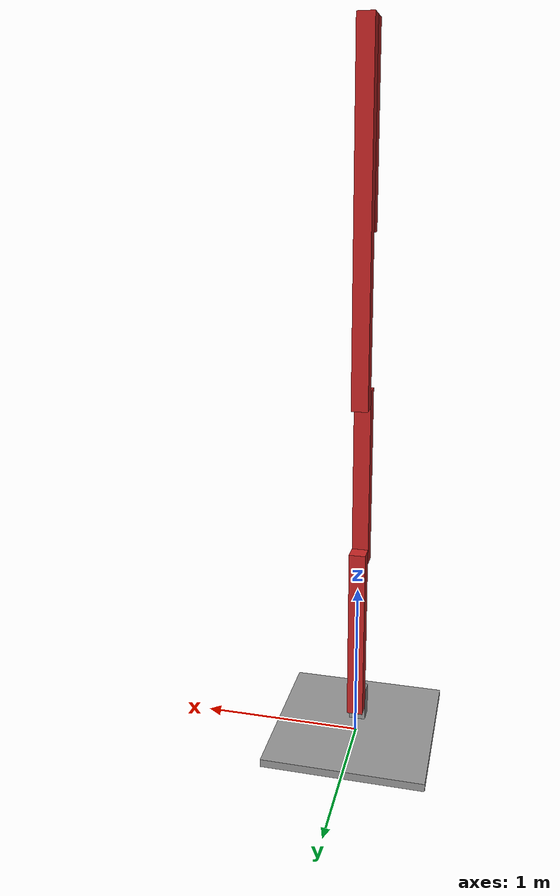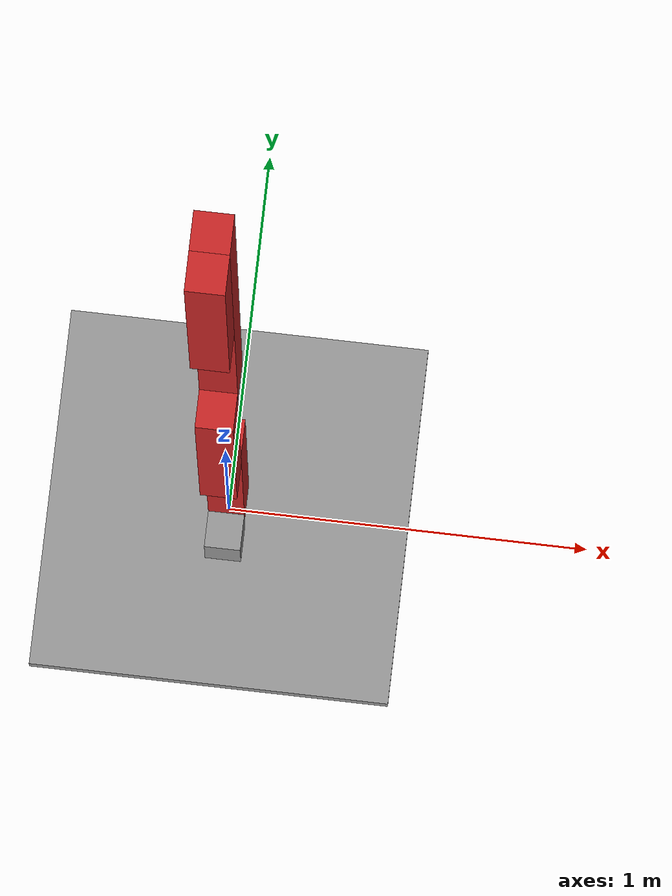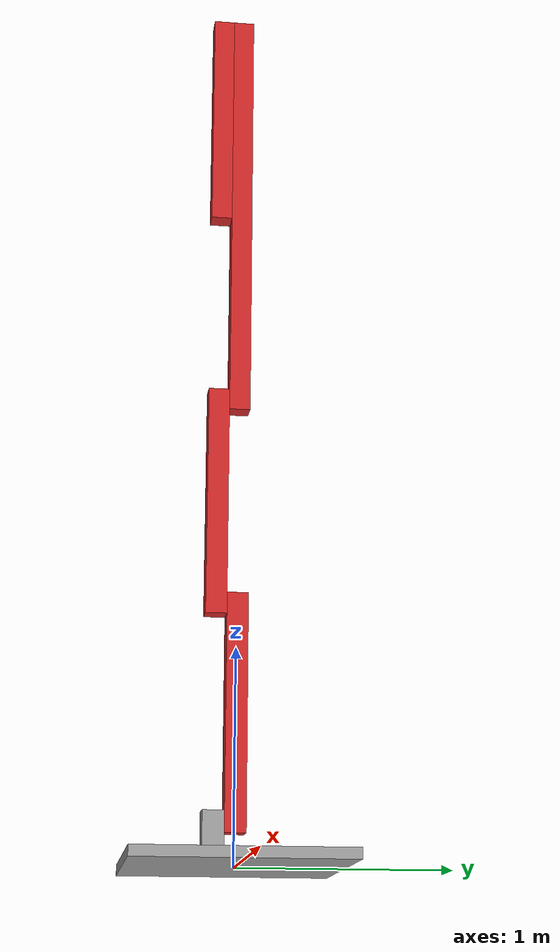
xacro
<?xml version="1.0"?>
<!-- Balancing Double Pendulum -->
<robot name="multilink_balancer" xmlns:xacro="http://www.ros.org/wiki/xacro">

  <!-- Constants for robot dimensions -->
  <xacro:property name="PI" value="3.1415926535897931"/>
  <xacro:property name="mass" value="1.0" /> <!-- arbitrary value for mass -->
  <xacro:property name="width" value="0.1" /> <!-- Square dimensions (widthxwidth) of beams -->
  <xacro:property name="height1" value="0.2" /> <!-- Link 1 -->
  <xacro:property name="height2" value="1.1" /> <!-- Link 2 -->
  <xacro:property name="height3" value="1.1" /> <!-- Link 3 -->
  <xacro:property name="height4" value="2.1" /> <!-- Link 4 -->
  <xacro:property name="height5" value="1.1" /> <!-- Link 5 -->

  <xacro:property name="foot_height" value="0.05" /> <!-- Foot dimensions -->
  <xacro:property name="foot_width" value="1.0" />
  <xacro:property name="foot_mass" value="10.0" />

  <xacro:property name="damping" value="0.0" />

  <xacro:property name="axel_offset" value="0.05" /> <!-- How far keep joints away from each other -->

  <!-- Import all Gazebo-customization elements, including Gazebo colors -->
  <xacro:include filename="$(find multilink_balancer_description)/urdf/multilink_balancer.gazebo" />
  <!-- Import Rviz colors -->
  <xacro:include filename="$(find multilink_balancer_description)/urdf/materials.xacro" />

  <!-- Used for fixing robot foot to the world -->

  <!-- Foot Link-->
  <link name="foot">
    <collision>
      <origin xyz="0 0 ${foot_height/2}" rpy="0 0 0"/>
      <geometry>
        <box size="${foot_width} ${foot_width} ${foot_height}"/>
      </geometry>
    </collision>

    <visual>
      <origin xyz="0 0 ${foot_height/2}" rpy="0 0 0"/>
      <geometry>
        <box size="${foot_width} ${foot_width} ${foot_height}"/>
      </geometry>
      <material name="grey"/>
    </visual>

    <inertial>
      <origin xyz="0 0 ${foot_height/2}" rpy="0 0 0"/>
      <mass value="${foot_mass}"/>
    <inertia
        ixx="${foot_mass / 12.0 * (foot_width*foot_width + foot_height*foot_height)}" ixy="0.0" ixz="0.0"
        iyy="${foot_mass / 12.0 * (foot_height*foot_height + foot_width*foot_width)}" iyz="0.0"
        izz="${foot_mass / 12.0 * (foot_width*foot_width + foot_width*foot_width)}"/>
    </inertial>
  </link>

  <joint name="foot_joint" type="fixed">
    <parent link="foot"/>
    <child link="link1"/>
    <origin xyz="0 -${width} ${foot_height}" rpy="0 0 0"/>
    <axis xyz="0 1 0"/>
  </joint>

  <!-- Knob on foot Link -->
  <link name="link1">
    <collision>
      <origin xyz="0 0 ${height1/2}" rpy="0 0 0"/>
      <geometry>
        <box size="${width} ${width} ${height1}"/>
      </geometry>
    </collision>

    <visual>
      <origin xyz="0 0 ${height1/2}" rpy="0 0 0"/>
      <geometry>
        <box size="${width} ${width} ${height1}"/>
      </geometry>
      <material name="grey"/>
    </visual>

    <inertial>
      <origin xyz="0 0 ${height1/2}" rpy="0 0 0"/>
      <mass value="${foot_mass}"/>
    <inertia
        ixx="${foot_mass / 12.0 * (width*width + height1*height1)}" ixy="0.0" ixz="0.0"
        iyy="${foot_mass / 12.0 * (height1*height1 + width*width)}" iyz="0.0"
        izz="${foot_mass / 12.0 * (width*width + width*width)}"/>
    </inertial>
  </link>

  <joint name="joint1" type="continuous">
    <parent link="link1"/>
    <child link="link2"/>
    <origin xyz="0 ${width} ${height1 - axel_offset}" rpy="0 0 0"/>
    <axis xyz="0 1 0"/>
    <dynamics damping="${damping}"/>
  </joint>

  <!-- Bottom Link -->
  <link name="link2">
    <collision>
      <origin xyz="0 0 ${height2/2 - axel_offset}" rpy="0 0 0"/>
      <geometry>
        <box size="${width} ${width} ${height2+axel_offset}"/>
      </geometry>
    </collision>

    <visual>
      <origin xyz="0 0 ${height2/2 - axel_offset}" rpy="0 0 0"/>
      <geometry>
        <box size="${width} ${width} ${height2}"/>
      </geometry>
      <material name="red"/>
    </visual>

    <inertial>
      <origin xyz="0 0 ${height2/2 - axel_offset}" rpy="0 0 0"/>
      <mass value="${mass}"/>
      <inertia
          ixx="0.0846" ixy="0.0" ixz="0.0"
          iyy="0.0846" iyz="0.0"
          izz="0.0025"/>
    </inertial>
  </link>

  <joint name="joint2" type="continuous">
    <parent link="link2"/>
    <child link="link3"/>
    <origin xyz="0 ${-width} ${height2 - axel_offset*2}" rpy="0 0 0"/>
    <axis xyz="0 1 0"/>
    <dynamics damping="${damping}"/>
  </joint>

  <!-- Middle Link -->
  <link name="link3">
    <collision>
      <origin xyz="0 0 ${height3/2 - axel_offset}" rpy="0 0 0"/>
      <geometry>
        <box size="${width} ${width} ${height3}"/>
      </geometry>
    </collision>

    <visual>
      <origin xyz="0 0 ${height3/2 - axel_offset}" rpy="0 0 0"/>
      <geometry>
        <box size="${width} ${width} ${height3}"/>
      </geometry>
      <material name="red"/>
    </visual>

    <inertial>
      <origin xyz="0 0 ${height3/2 - axel_offset}" rpy="0 0 0"/>
      <mass value="${mass}"/>
      <inertia
          ixx="0.0846" ixy="0.0" ixz="0.0"
          iyy="0.0846" iyz="0.0"
          izz="0.0025"/>
    </inertial>
  </link>

  <joint name="joint3" type="continuous">
    <parent link="link3"/>
    <child link="link4"/>
    <origin xyz="0 ${width} ${height3 - axel_offset*2}" rpy="0 0 0"/>
    <axis xyz="0 1 0"/>
    <dynamics damping="${damping}"/>
  </joint>

  <!-- Torso Link -->
  <link name="link4">
    <collision>
      <origin xyz="0 0 ${height4/2 - axel_offset}" rpy="0 0 0"/>
      <geometry>
        <box size="${width} ${width} ${height4}"/>
      </geometry>
    </collision>

    <visual>
      <origin xyz="0 0 ${height4/2 - axel_offset}" rpy="0 0 0"/>
      <geometry>
        <box size="${width} ${width} ${height4}"/>
      </geometry>
      <material name="red"/>
    </visual>

    <inertial>
      <origin xyz="0 0 ${height4/2 - axel_offset}" rpy="0 0 0"/>
      <mass value="${2*mass}"/>
      <inertia
          ixx="0.0846" ixy="0.0" ixz="0.0"
          iyy="0.0846" iyz="0.0"
          izz="0.0025"/>
    </inertial>
  </link>

  <joint name="joint4" type="continuous">
    <parent link="link4"/>
    <child link="link5"/>
    <origin xyz="0 ${-width} ${height3 - axel_offset*2}" rpy="0 0 0"/>
    <axis xyz="0 1 0"/>
    <dynamics damping="${damping}"/>
  </joint>

  <!-- Arm Link -->
  <link name="link5">
    <collision>
      <origin xyz="0 0 ${height5/2 - axel_offset}" rpy="0 0 0"/>
      <geometry>
        <box size="${width} ${width} ${height5}"/>
      </geometry>
    </collision>

    <visual>
      <origin xyz="0 0 ${height5/2 - axel_offset}" rpy="0 0 0"/>
      <geometry>
        <box size="${width} ${width} ${height5}"/>
      </geometry>
      <material name="red"/>
    </visual>

    <inertial>
      <origin xyz="0 0 ${height5/2 - axel_offset}" rpy="0 0 0"/>
      <mass value="${mass}"/>
      <inertia
          ixx="0.0846" ixy="0.0" ixz="0.0"
          iyy="0.0846" iyz="0.0"
          izz="0.0025"/>
    </inertial>
  </link>

  <!-- Motors so we can actuate the joints -->
  <transmission name="tran1">
    <type>transmission_interface/SimpleTransmission</type>
    <joint name="joint1">
      <hardwareInterface>hardware_interface/EffortJointInterface</hardwareInterface>
    </joint>
    <actuator name="motor1">
      <hardwareInterface>hardware_interface/EffortJointInterface</hardwareInterface>
      <mechanicalReduction>1</mechanicalReduction>
    </actuator>
  </transmission>

  <transmission name="tran2">
    <type>transmission_interface/SimpleTransmission</type>
    <joint name="joint2">
      <hardwareInterface>hardware_interface/EffortJointInterface</hardwareInterface>
    </joint>
    <actuator name="motor2">
      <hardwareInterface>hardware_interface/EffortJointInterface</hardwareInterface>
      <mechanicalReduction>1</mechanicalReduction>
    </actuator>
  </transmission>

  <transmission name="tran3">
    <type>transmission_interface/SimpleTransmission</type>
    <joint name="joint3">
      <hardwareInterface>hardware_interface/EffortJointInterface</hardwareInterface>
    </joint>
    <actuator name="motor3">
      <hardwareInterface>hardware_interface/EffortJointInterface</hardwareInterface>
      <mechanicalReduction>1</mechanicalReduction>
    </actuator>
  </transmission>

  <transmission name="tran4">
    <type>transmission_interface/SimpleTransmission</type>
    <joint name="joint4">
      <hardwareInterface>hardware_interface/EffortJointInterface</hardwareInterface>
    </joint>
    <actuator name="motor4">
      <hardwareInterface>hardware_interface/EffortJointInterface</hardwareInterface>
      <mechanicalReduction>1</mechanicalReduction>
    </actuator>
  </transmission>

</robot>
